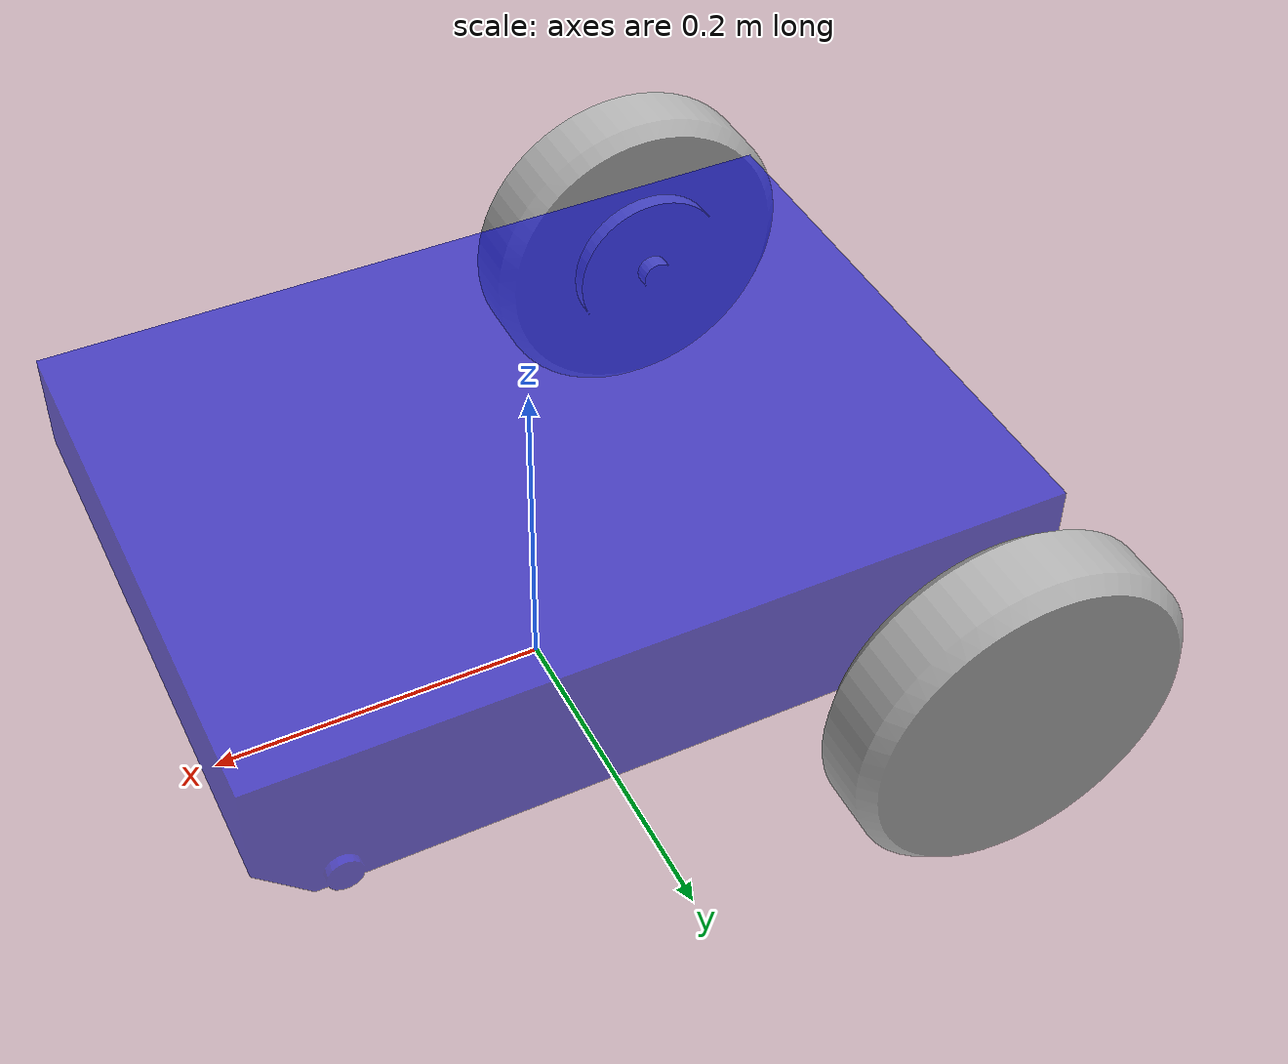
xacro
<?xml version="1.0" ?>
<robot name="my" xmlns:xacro="http://www.ros.org/wiki/xacro">

<xacro:include filename="$(find maker_robot)/urdf/materials.xacro" />
 <material name="blue">
	    <color rgba="0 0 0.8 0.6"/>
    </material>

<link name="base_link">
 <collision>
          <origin rpy="0 0 0" xyz="0 0 0.0005"/>
          <geometry>
            <box size="0.54 0.55 0.001"/>
          </geometry>
  </collision>
</link>

<joint name="base_link_joint" type="fixed">
        <origin rpy="0 0 -1.5708" xyz="0 0 0.1" />
        <parent link="base_link" />
        <child link="base_plate" />
</joint>

<link name="base_plate">

  <visual>
    <origin rpy="0 0 0" xyz="0 0 -0.1"/>
    <geometry>
      <mesh filename="package://maker_robot/meshes_2/base_plate.stl" scale="0.001 0.001 0.001"/>
    </geometry>
    <material name="blue"/>
  </visual>
  <collision>
    <origin rpy="0 0 0" xyz="0 0 -0.1"/>
    <geometry>
      <mesh filename="package://maker_robot/meshes_2/base_plate.stl" scale="0.001 0.001 0.001"/>
    </geometry>
  </collision>
</link>

<link name="right_front_wheel">

  <visual>
    <origin rpy="0 0 0" xyz="-0.175 0.17 -0.1"/>
    <geometry>
      <mesh filename="package://maker_robot/meshes_2/right_front_wheel.stl" scale="0.001 0.001 0.001"/>
    </geometry>
    <material name="silver"/>
  </visual>
  <collision>
    <origin rpy="0 0 0" xyz="-0.175 0.17 -0.1"/>
    <geometry>
      <mesh filename="package://maker_robot/meshes_2/right_front_wheel.stl" scale="0.001 0.001 0.001"/>
    </geometry>
  </collision>
</link>

<link name="right_rear_wheel">

  <visual>
    <origin rpy="0 0 0" xyz="-0.175 -0.18 -0.1"/>
    <geometry>
      <mesh filename="package://maker_robot/meshes_2/right_rear_wheel.stl" scale="0.001 0.001 0.001"/>
    </geometry>
    <material name="silver"/>
  </visual>
  <collision>
    <origin rpy="0 0 0" xyz="-0.175 -0.18 -0.1"/>
    <geometry>
      <mesh filename="package://maker_robot/meshes_2/right_rear_wheel.stl" scale="0.001 0.001 0.001"/>
    </geometry>
  </collision>
</link>

<link name="left_front_wheel">
  <visual>
    <origin rpy="0 0 0" xyz="0.175 0.17 -0.1"/>
    <geometry>
      <mesh filename="package://maker_robot/meshes_2/left_front_wheel.stl" scale="0.001 0.001 0.001"/>
    </geometry>
    <material name="silver"/>
  </visual>
  <collision>
    <origin rpy="0 0 0" xyz="0.175 0.17 -0.1"/>
    <geometry>
      <mesh filename="package://maker_robot/meshes_2/left_front_wheel.stl" scale="0.001 0.001 0.001"/>
    </geometry>
  </collision>
</link>

<link name="left_rear_wheel">

  <visual>
    <origin rpy="0 0 0" xyz="0.175 -0.18 -0.1"/>
    <geometry>
      <mesh filename="package://maker_robot/meshes_2/left_rear_wheel.stl" scale="0.001 0.001 0.001"/>
    </geometry>
    <material name="silver"/>
  </visual>
  <collision>
    <origin rpy="0 0 0" xyz="0.175 -0.18 -0.1"/>
    <geometry>
      <mesh filename="package://maker_robot/meshes_2/left_rear_wheel.stl" scale="0.001 0.001 0.001"/>
    </geometry>
  </collision>
</link>

<joint name="Rev1" type="continuous">
  <origin rpy="0 0 0" xyz="0.175 -0.17 0.0"/>
  <parent link="base_plate"/>
  <child link="right_front_wheel"/>
  <axis xyz="1.0 0.0 0.0"/>
</joint>

<joint name="Rev2" type="continuous">
  <origin rpy="0 0 0" xyz="0.175 0.18 0.0"/>
  <parent link="base_plate"/>
  <child link="right_rear_wheel"/>
  <axis xyz="1.0 0.0 0.0"/>
</joint>

<joint name="Rev3" type="continuous">
  <origin rpy="0 0 0" xyz="-0.175 -0.17 0.0"/>
  <parent link="base_plate"/>
  <child link="left_front_wheel"/>
  <axis xyz="-1.0 0.0 0.0"/>
</joint>

<joint name="Rev4" type="continuous">
  <origin rpy="0 0 0" xyz="-0.175 0.18 0.0"/>
  <parent link="base_plate"/>
  <child link="left_rear_wheel"/>
  <axis xyz="-1.0 0.0 0.0"/>
</joint>

</robot>

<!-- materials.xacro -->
<robot name="my_robot_car" xmlns:xacro="http://www.ros.org/wiki/xacro" >

<material name="yellow">
  <color rgba="1.000 0.000 0.000 1.000"/>
</material>
<material name="black">
	    <color rgba="0 0 0 1"/>
</material>
<material name="silver">
  <color rgba="0.700 0.700 0.700 1.000"/>
</material>
</robot>
